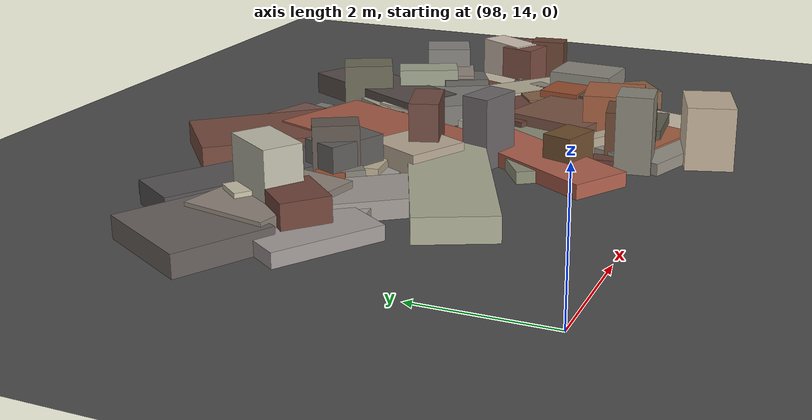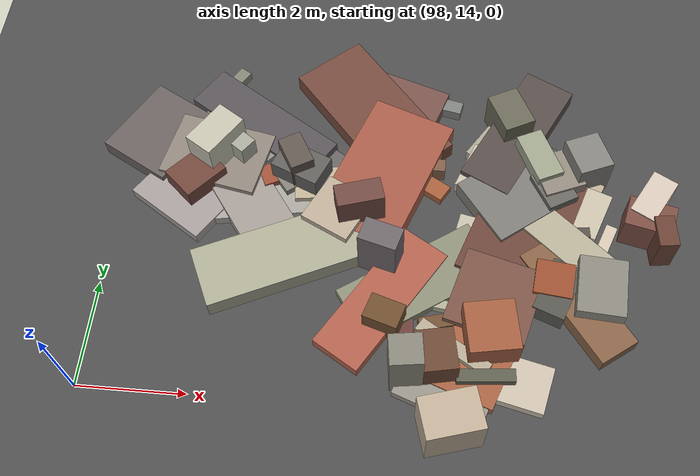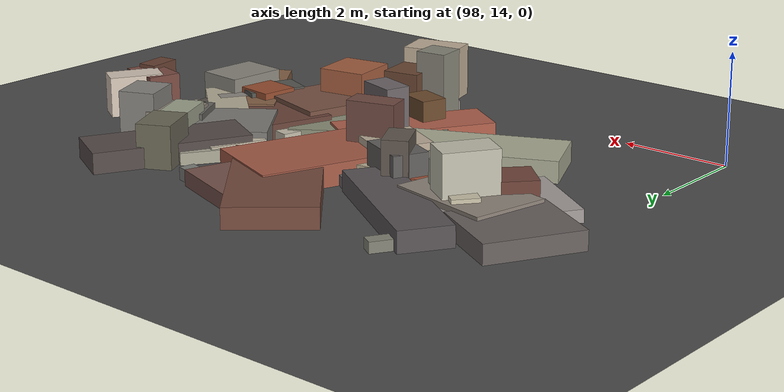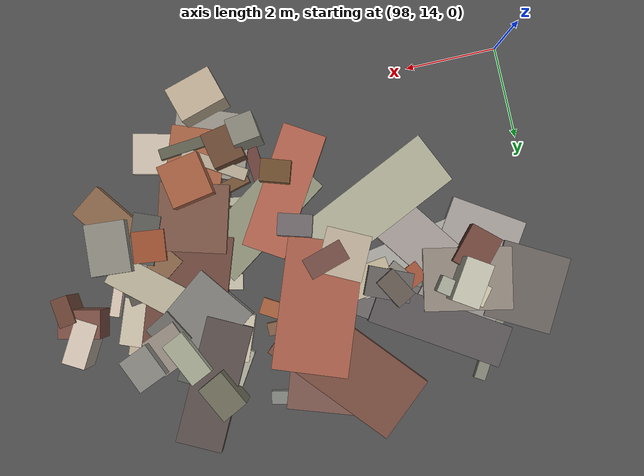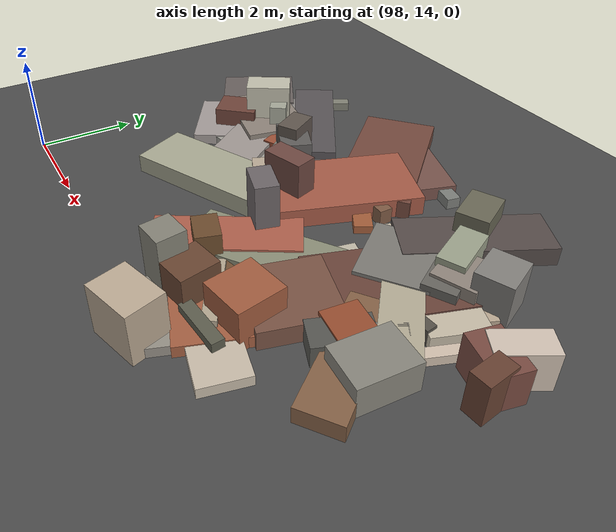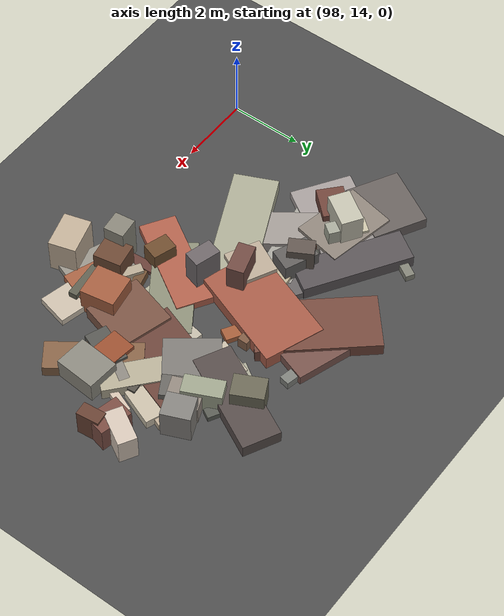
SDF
<sdf version="1.6">
 <world name="navitas_arena">
  <model name="ground_plane">
   <static>true</static>
   <link name="link">
    <collision name="collision">
     <geometry><plane><normal>0 0 1</normal><size>400 400</size></plane></geometry>
     <surface><friction><ode><mu>0.800</mu><mu2>0.800</mu2></ode></friction></surface>
    </collision>
    <visual name="visual">
     <cast_shadows>false</cast_shadows>
     <geometry><plane><normal>0 0 1</normal><size>400 400</size></plane></geometry>
     <material>
      <specular>0.04 0.04 0.04 1</specular>
      <script>
       <uri>file://media/materials/scripts/navitas_asphalt.material</uri>
       <name>Navitas/RealArenaAsphalt</name>
      </script>
     </material>
    </visual>
   </link>
  </model>
  <model name="deb_zor_3">
   <static>true</static>
   <pose>103.791 19.572 0.000 0 0 0</pose>
   <link name="link">
    <collision name="col_0">
     <pose>-0.552 0.626 0.140 0.000 0.000 1.245</pose>
     <geometry><box><size>1.552 1.609 0.280</size></box></geometry>
    </collision>
    <visual name="vis_0">
     <pose>-0.552 0.626 0.140 0.000 0.000 1.245</pose>
     <geometry><box><size>1.552 1.609 0.280</size></box></geometry>
     <material>
      <ambient>0.43 0.31 0.27 1</ambient>
      <diffuse>0.47 0.33 0.30 1</diffuse>
      <specular>0.05 0.05 0.045 1</specular>
     </material>
    </visual>
    <collision name="col_1">
     <pose>0.297 -1.087 0.084 0.000 0.000 1.035</pose>
     <geometry><box><size>0.359 0.470 0.167</size></box></geometry>
    </collision>
    <visual name="vis_1">
     <pose>0.297 -1.087 0.084 0.000 0.000 1.035</pose>
     <geometry><box><size>0.359 0.470 0.167</size></box></geometry>
     <material>
      <ambient>0.59 0.34 0.21 1</ambient>
      <diffuse>0.64 0.37 0.23 1</diffuse>
      <specular>0.05 0.05 0.045 1</specular>
     </material>
    </visual>
    <collision name="col_2">
     <pose>-1.042 0.510 0.185 0.000 0.000 2.286</pose>
     <geometry><box><size>3.177 1.525 0.370</size></box></geometry>
    </collision>
    <visual name="vis_2">
     <pose>-1.042 0.510 0.185 0.000 0.000 2.286</pose>
     <geometry><box><size>3.177 1.525 0.370</size></box></geometry>
     <material>
      <ambient>0.42 0.27 0.22 1</ambient>
      <diffuse>0.46 0.29 0.24 1</diffuse>
      <specular>0.05 0.05 0.045 1</specular>
     </material>
    </visual>
    <collision name="col_3">
     <pose>0.343 -0.657 0.160 0.000 0.000 3.133</pose>
     <geometry><box><size>0.238 0.269 0.320</size></box></geometry>
    </collision>
    <visual name="vis_3">
     <pose>0.343 -0.657 0.160 0.000 0.000 3.133</pose>
     <geometry><box><size>0.238 0.269 0.320</size></box></geometry>
     <material>
      <ambient>0.46 0.33 0.25 1</ambient>
      <diffuse>0.50 0.36 0.27 1</diffuse>
      <specular>0.05 0.05 0.045 1</specular>
     </material>
    </visual>
    <collision name="col_4">
     <pose>0.541 0.850 0.112 0.000 0.000 1.362</pose>
     <geometry><box><size>0.281 0.378 0.223</size></box></geometry>
    </collision>
    <visual name="vis_4">
     <pose>0.541 0.850 0.112 0.000 0.000 1.362</pose>
     <geometry><box><size>0.281 0.378 0.223</size></box></geometry>
     <material>
      <ambient>0.45 0.46 0.45 1</ambient>
      <diffuse>0.49 0.50 0.48 1</diffuse>
      <specular>0.05 0.05 0.045 1</specular>
     </material>
    </visual>
   </link>
  </model>
  <model name="deb_zor_108">
   <static>true</static>
   <pose>105.572 19.106 0.000 0 0 0</pose>
   <link name="link">
    <collision name="col_0">
     <pose>0.775 -0.592 0.235 0.000 0.000 2.083</pose>
     <geometry><box><size>0.789 0.610 0.470</size></box></geometry>
    </collision>
    <visual name="vis_0">
     <pose>0.775 -0.592 0.235 0.000 0.000 2.083</pose>
     <geometry><box><size>0.789 0.610 0.470</size></box></geometry>
     <material>
      <ambient>0.38 0.37 0.35 1</ambient>
      <diffuse>0.41 0.40 0.38 1</diffuse>
      <specular>0.05 0.05 0.045 1</specular>
     </material>
    </visual>
    <collision name="col_1">
     <pose>0.611 0.437 0.079 0.000 0.000 1.068</pose>
     <geometry><box><size>0.286 0.476 0.159</size></box></geometry>
    </collision>
    <visual name="vis_1">
     <pose>0.611 0.437 0.079 0.000 0.000 1.068</pose>
     <geometry><box><size>0.286 0.476 0.159</size></box></geometry>
     <material>
      <ambient>0.33 0.33 0.31 1</ambient>
      <diffuse>0.35 0.36 0.33 1</diffuse>
      <specular>0.05 0.05 0.045 1</specular>
     </material>
    </visual>
    <collision name="col_2">
     <pose>0.838 -0.281 0.264 0.000 0.000 0.389</pose>
     <geometry><box><size>0.818 0.868 0.527</size></box></geometry>
    </collision>
    <visual name="vis_2">
     <pose>0.838 -0.281 0.264 0.000 0.000 0.389</pose>
     <geometry><box><size>0.818 0.868 0.527</size></box></geometry>
     <material>
      <ambient>0.53 0.49 0.45 1</ambient>
      <diffuse>0.57 0.53 0.49 1</diffuse>
      <specular>0.05 0.05 0.045 1</specular>
     </material>
    </visual>
    <collision name="col_3">
     <pose>0.078 0.694 0.187 0.000 0.000 1.097</pose>
     <geometry><box><size>2.805 1.026 0.374</size></box></geometry>
    </collision>
    <visual name="vis_3">
     <pose>0.078 0.694 0.187 0.000 0.000 1.097</pose>
     <geometry><box><size>2.805 1.026 0.374</size></box></geometry>
     <material>
      <ambient>0.31 0.28 0.27 1</ambient>
      <diffuse>0.34 0.30 0.29 1</diffuse>
      <specular>0.05 0.05 0.045 1</specular>
     </material>
    </visual>
   </link>
  </model>
  <model name="deb_zor_120">
   <static>true</static>
   <pose>106.979 16.659 0.000 0 0 0</pose>
   <link name="link">
    <collision name="col_0">
     <pose>-0.134 0.970 0.159 0.000 0.000 1.677</pose>
     <geometry><box><size>0.212 0.374 0.318</size></box></geometry>
    </collision>
    <visual name="vis_0">
     <pose>-0.134 0.970 0.159 0.000 0.000 1.677</pose>
     <geometry><box><size>0.212 0.374 0.318</size></box></geometry>
     <material>
      <ambient>0.32 0.30 0.27 1</ambient>
      <diffuse>0.34 0.32 0.29 1</diffuse>
      <specular>0.05 0.05 0.045 1</specular>
     </material>
    </visual>
    <collision name="col_1">
     <pose>-0.905 0.522 0.100 0.000 0.000 1.811</pose>
     <geometry><box><size>1.975 1.145 0.199</size></box></geometry>
    </collision>
    <visual name="vis_1">
     <pose>-0.905 0.522 0.100 0.000 0.000 1.811</pose>
     <geometry><box><size>1.975 1.145 0.199</size></box></geometry>
     <material>
      <ambient>0.36 0.36 0.33 1</ambient>
      <diffuse>0.39 0.38 0.35 1</diffuse>
      <specular>0.05 0.05 0.045 1</specular>
     </material>
    </visual>
    <collision name="col_2">
     <pose>0.221 0.507 0.092 0.000 0.000 1.198</pose>
     <geometry><box><size>1.545 0.216 0.183</size></box></geometry>
    </collision>
    <visual name="vis_2">
     <pose>0.221 0.507 0.092 0.000 0.000 1.198</pose>
     <geometry><box><size>1.545 0.216 0.183</size></box></geometry>
     <material>
      <ambient>0.76 0.70 0.64 1</ambient>
      <diffuse>0.83 0.76 0.69 1</diffuse>
      <specular>0.05 0.05 0.045 1</specular>
     </material>
    </visual>
    <collision name="col_3">
     <pose>-0.553 -0.272 0.204 0.000 0.000 1.194</pose>
     <geometry><box><size>1.084 0.601 0.408</size></box></geometry>
    </collision>
    <visual name="vis_3">
     <pose>-0.553 -0.272 0.204 0.000 0.000 1.194</pose>
     <geometry><box><size>1.084 0.601 0.408</size></box></geometry>
     <material>
      <ambient>0.31 0.32 0.30 1</ambient>
      <diffuse>0.34 0.34 0.32 1</diffuse>
      <specular>0.05 0.05 0.045 1</specular>
     </material>
    </visual>
    <collision name="col_4">
     <pose>0.284 -0.122 0.081 0.000 0.000 0.202</pose>
     <geometry><box><size>0.477 0.358 0.163</size></box></geometry>
    </collision>
    <visual name="vis_4">
     <pose>0.284 -0.122 0.081 0.000 0.000 0.202</pose>
     <geometry><box><size>0.477 0.358 0.163</size></box></geometry>
     <material>
      <ambient>0.57 0.56 0.54 1</ambient>
      <diffuse>0.62 0.60 0.58 1</diffuse>
      <specular>0.05 0.05 0.045 1</specular>
     </material>
    </visual>
    <collision name="col_5">
     <pose>-0.632 -0.090 0.222 0.000 0.000 1.450</pose>
     <geometry><box><size>0.688 0.713 0.443</size></box></geometry>
    </collision>
    <visual name="vis_5">
     <pose>-0.632 -0.090 0.222 0.000 0.000 1.450</pose>
     <geometry><box><size>0.688 0.713 0.443</size></box></geometry>
     <material>
      <ambient>0.55 0.29 0.18 1</ambient>
      <diffuse>0.60 0.31 0.19 1</diffuse>
      <specular>0.05 0.05 0.045 1</specular>
     </material>
    </visual>
   </link>
  </model>
  <model name="deb_zor_137">
   <static>true</static>
   <pose>100.641 18.951 0.000 0 0 0</pose>
   <link name="link">
    <collision name="col_0">
     <pose>-0.416 0.496 0.152 0.000 0.000 2.414</pose>
     <geometry><box><size>1.753 1.016 0.304</size></box></geometry>
    </collision>
    <visual name="vis_0">
     <pose>-0.416 0.496 0.152 0.000 0.000 2.414</pose>
     <geometry><box><size>1.753 1.016 0.304</size></box></geometry>
     <material>
      <ambient>0.53 0.51 0.50 1</ambient>
      <diffuse>0.57 0.55 0.54 1</diffuse>
      <specular>0.05 0.05 0.045 1</specular>
     </material>
    </visual>
    <collision name="col_1">
     <pose>0.647 -0.556 0.169 0.000 0.000 0.662</pose>
     <geometry><box><size>0.477 0.479 0.338</size></box></geometry>
    </collision>
    <visual name="vis_1">
     <pose>0.647 -0.556 0.169 0.000 0.000 0.662</pose>
     <geometry><box><size>0.477 0.479 0.338</size></box></geometry>
     <material>
      <ambient>0.47 0.47 0.42 1</ambient>
      <diffuse>0.51 0.50 0.46 1</diffuse>
      <specular>0.05 0.05 0.045 1</specular>
     </material>
    </visual>
    <collision name="col_2">
     <pose>-0.855 -0.148 0.200 0.000 0.000 2.942</pose>
     <geometry><box><size>1.927 1.370 0.399</size></box></geometry>
    </collision>
    <visual name="vis_2">
     <pose>-0.855 -0.148 0.200 0.000 0.000 2.942</pose>
     <geometry><box><size>1.927 1.370 0.399</size></box></geometry>
     <material>
      <ambient>0.52 0.48 0.45 1</ambient>
      <diffuse>0.56 0.52 0.48 1</diffuse>
      <specular>0.05 0.05 0.045 1</specular>
     </material>
    </visual>
    <collision name="col_3">
     <pose>0.819 0.012 0.095 0.000 0.000 2.564</pose>
     <geometry><box><size>2.078 1.050 0.190</size></box></geometry>
    </collision>
    <visual name="vis_3">
     <pose>0.819 0.012 0.095 0.000 0.000 2.564</pose>
     <geometry><box><size>2.078 1.050 0.190</size></box></geometry>
     <material>
      <ambient>0.38 0.36 0.36 1</ambient>
      <diffuse>0.41 0.39 0.39 1</diffuse>
      <specular>0.05 0.05 0.045 1</specular>
     </material>
    </visual>
    <collision name="col_4">
     <pose>-0.627 -0.031 0.101 0.000 0.000 0.520</pose>
     <geometry><box><size>0.445 0.392 0.203</size></box></geometry>
    </collision>
    <visual name="vis_4">
     <pose>-0.627 -0.031 0.101 0.000 0.000 0.520</pose>
     <geometry><box><size>0.445 0.392 0.203</size></box></geometry>
     <material>
      <ambient>0.59 0.59 0.52 1</ambient>
      <diffuse>0.64 0.64 0.56 1</diffuse>
      <specular>0.05 0.05 0.045 1</specular>
     </material>
    </visual>
    <collision name="col_5">
     <pose>-0.055 0.680 0.183 0.000 0.000 2.574</pose>
     <geometry><box><size>2.995 0.915 0.365</size></box></geometry>
    </collision>
    <visual name="vis_5">
     <pose>-0.055 0.680 0.183 0.000 0.000 2.574</pose>
     <geometry><box><size>2.995 0.915 0.365</size></box></geometry>
     <material>
      <ambient>0.32 0.30 0.32 1</ambient>
      <diffuse>0.35 0.33 0.34 1</diffuse>
      <specular>0.05 0.05 0.045 1</specular>
     </material>
    </visual>
    <collision name="col_6">
     <pose>-0.198 0.166 0.083 0.000 0.000 2.632</pose>
     <geometry><box><size>2.589 0.929 0.166</size></box></geometry>
    </collision>
    <visual name="vis_6">
     <pose>-0.198 0.166 0.083 0.000 0.000 2.632</pose>
     <geometry><box><size>2.589 0.929 0.166</size></box></geometry>
     <material>
      <ambient>0.43 0.45 0.39 1</ambient>
      <diffuse>0.46 0.48 0.42 1</diffuse>
      <specular>0.05 0.05 0.045 1</specular>
     </material>
    </visual>
   </link>
  </model>
  <model name="deb_zor_149">
   <static>true</static>
   <pose>107.491 18.188 0.000 0 0 0</pose>
   <link name="link">
    <collision name="col_0">
     <pose>0.848 -0.658 0.398 0.000 0.000 1.688</pose>
     <geometry><box><size>0.619 0.365 0.797</size></box></geometry>
    </collision>
    <visual name="vis_0">
     <pose>0.848 -0.658 0.398 0.000 0.000 1.688</pose>
     <geometry><box><size>0.619 0.365 0.797</size></box></geometry>
     <material>
      <ambient>0.38 0.24 0.19 1</ambient>
      <diffuse>0.41 0.26 0.20 1</diffuse>
      <specular>0.05 0.05 0.045 1</specular>
     </material>
    </visual>
    <collision name="col_1">
     <pose>0.603 -0.321 0.363 0.000 0.000 1.339</pose>
     <geometry><box><size>0.619 0.894 0.725</size></box></geometry>
    </collision>
    <visual name="vis_1">
     <pose>0.603 -0.321 0.363 0.000 0.000 1.339</pose>
     <geometry><box><size>0.619 0.894 0.725</size></box></geometry>
     <material>
      <ambient>0.44 0.28 0.24 1</ambient>
      <diffuse>0.48 0.30 0.26 1</diffuse>
      <specular>0.05 0.05 0.045 1</specular>
     </material>
    </visual>
    <collision name="col_2">
     <pose>-0.532 0.887 0.430 0.000 0.000 3.541</pose>
     <geometry><box><size>0.675 0.771 0.860</size></box></geometry>
    </collision>
    <visual name="vis_2">
     <pose>-0.532 0.887 0.430 0.000 0.000 3.541</pose>
     <geometry><box><size>0.675 0.771 0.860</size></box></geometry>
     <material>
      <ambient>0.48 0.48 0.45 1</ambient>
      <diffuse>0.52 0.51 0.49 1</diffuse>
      <specular>0.05 0.05 0.045 1</specular>
     </material>
    </visual>
    <collision name="col_3">
     <pose>-0.347 0.514 0.102 0.000 0.000 2.754</pose>
     <geometry><box><size>0.356 0.281 0.203</size></box></geometry>
    </collision>
    <visual name="vis_3">
     <pose>-0.347 0.514 0.102 0.000 0.000 2.754</pose>
     <geometry><box><size>0.356 0.281 0.203</size></box></geometry>
     <material>
      <ambient>0.69 0.62 0.53 1</ambient>
      <diffuse>0.74 0.67 0.58 1</diffuse>
      <specular>0.05 0.05 0.045 1</specular>
     </material>
    </visual>
    <collision name="col_4">
     <pose>0.675 0.088 0.375 0.000 0.000 1.049</pose>
     <geometry><box><size>0.985 0.499 0.750</size></box></geometry>
    </collision>
    <visual name="vis_4">
     <pose>0.675 0.088 0.375 0.000 0.000 1.049</pose>
     <geometry><box><size>0.985 0.499 0.750</size></box></geometry>
     <material>
      <ambient>0.77 0.71 0.65 1</ambient>
      <diffuse>0.83 0.77 0.71 1</diffuse>
      <specular>0.05 0.05 0.045 1</specular>
     </material>
    </visual>
   </link>
  </model>
  <model name="deb_zor_178">
   <static>true</static>
   <pose>104.690 14.770 0.000 0 0 0</pose>
   <link name="link">
    <collision name="col_0">
     <pose>-0.930 -0.094 0.611 0.000 0.000 0.131</pose>
     <geometry><box><size>0.584 0.562 1.222</size></box></geometry>
    </collision>
    <visual name="vis_0">
     <pose>-0.930 -0.094 0.611 0.000 0.000 0.131</pose>
     <geometry><box><size>0.584 0.562 1.222</size></box></geometry>
     <material>
      <ambient>0.49 0.48 0.44 1</ambient>
      <diffuse>0.53 0.52 0.47 1</diffuse>
      <specular>0.05 0.05 0.045 1</specular>
     </material>
    </visual>
    <collision name="col_1">
     <pose>-0.419 0.099 0.410 0.000 0.000 0.189</pose>
     <geometry><box><size>0.696 0.769 0.821</size></box></geometry>
    </collision>
    <visual name="vis_1">
     <pose>-0.419 0.099 0.410 0.000 0.000 0.189</pose>
     <geometry><box><size>0.696 0.769 0.821</size></box></geometry>
     <material>
      <ambient>0.39 0.26 0.19 1</ambient>
      <diffuse>0.42 0.28 0.20 1</diffuse>
      <specular>0.05 0.05 0.045 1</specular>
     </material>
    </visual>
    <collision name="col_2">
     <pose>-0.111 0.373 0.173 0.000 0.000 -0.558</pose>
     <geometry><box><size>1.474 0.263 0.346</size></box></geometry>
    </collision>
    <visual name="vis_2">
     <pose>-0.111 0.373 0.173 0.000 0.000 -0.558</pose>
     <geometry><box><size>1.474 0.263 0.346</size></box></geometry>
     <material>
      <ambient>0.66 0.61 0.53 1</ambient>
      <diffuse>0.71 0.66 0.57 1</diffuse>
      <specular>0.05 0.05 0.045 1</specular>
     </material>
    </visual>
    <collision name="col_3">
     <pose>0.473 -0.127 0.188 0.000 0.000 0.084</pose>
     <geometry><box><size>1.043 0.235 0.375</size></box></geometry>
    </collision>
    <visual name="vis_3">
     <pose>0.473 -0.127 0.188 0.000 0.000 0.084</pose>
     <geometry><box><size>1.043 0.235 0.375</size></box></geometry>
     <material>
      <ambient>0.34 0.34 0.28 1</ambient>
      <diffuse>0.37 0.37 0.31 1</diffuse>
      <specular>0.05 0.05 0.045 1</specular>
     </material>
    </visual>
    <collision name="col_4">
     <pose>-0.114 -1.047 0.500 0.000 0.000 0.283</pose>
     <geometry><box><size>1.021 0.748 1.001</size></box></geometry>
    </collision>
    <visual name="vis_4">
     <pose>-0.114 -1.047 0.500 0.000 0.000 0.283</pose>
     <geometry><box><size>1.021 0.748 1.001</size></box></geometry>
     <material>
      <ambient>0.70 0.63 0.55 1</ambient>
      <diffuse>0.75 0.68 0.59 1</diffuse>
      <specular>0.05 0.05 0.045 1</specular>
     </material>
    </visual>
   </link>
  </model>
  <model name="deb_zor_189">
   <static>true</static>
   <pose>103.122 16.179 0.000 0 0 0</pose>
   <link name="link">
    <collision name="col_0">
     <pose>0.034 0.676 0.570 0.000 0.000 1.290</pose>
     <geometry><box><size>0.465 0.729 1.141</size></box></geometry>
    </collision>
    <visual name="vis_0">
     <pose>0.034 0.676 0.570 0.000 0.000 1.290</pose>
     <geometry><box><size>0.465 0.729 1.141</size></box></geometry>
     <material>
      <ambient>0.40 0.37 0.38 1</ambient>
      <diffuse>0.43 0.40 0.41 1</diffuse>
      <specular>0.05 0.05 0.045 1</specular>
     </material>
    </visual>
    <collision name="col_1">
     <pose>0.402 0.571 0.116 0.000 0.000 1.571</pose>
     <geometry><box><size>1.067 0.194 0.232</size></box></geometry>
    </collision>
    <visual name="vis_1">
     <pose>0.402 0.571 0.116 0.000 0.000 1.571</pose>
     <geometry><box><size>1.067 0.194 0.232</size></box></geometry>
     <material>
      <ambient>0.69 0.67 0.56 1</ambient>
      <diffuse>0.75 0.72 0.60 1</diffuse>
      <specular>0.05 0.05 0.045 1</specular>
     </material>
    </visual>
    <collision name="col_2">
     <pose>0.196 -0.572 0.308 0.000 0.000 1.259</pose>
     <geometry><box><size>0.485 0.658 0.615</size></box></geometry>
    </collision>
    <visual name="vis_2">
     <pose>0.196 -0.572 0.308 0.000 0.000 1.259</pose>
     <geometry><box><size>0.485 0.658 0.615</size></box></geometry>
     <material>
      <ambient>0.40 0.28 0.17 1</ambient>
      <diffuse>0.43 0.30 0.18 1</diffuse>
      <specular>0.05 0.05 0.045 1</specular>
     </material>
    </visual>
    <collision name="col_3">
     <pose>0.765 0.265 0.097 0.000 0.000 0.595</pose>
     <geometry><box><size>2.842 1.148 0.195</size></box></geometry>
    </collision>
    <visual name="vis_3">
     <pose>0.765 0.265 0.097 0.000 0.000 0.595</pose>
     <geometry><box><size>2.842 1.148 0.195</size></box></geometry>
     <material>
      <ambient>0.51 0.51 0.44 1</ambient>
      <diffuse>0.55 0.56 0.47 1</diffuse>
      <specular>0.05 0.05 0.045 1</specular>
     </material>
    </visual>
    <collision name="col_4">
     <pose>0.575 -0.554 0.065 0.000 0.000 1.661</pose>
     <geometry><box><size>1.742 0.290 0.131</size></box></geometry>
    </collision>
    <visual name="vis_4">
     <pose>0.575 -0.554 0.065 0.000 0.000 1.661</pose>
     <geometry><box><size>1.742 0.290 0.131</size></box></geometry>
     <material>
      <ambient>0.38 0.23 0.20 1</ambient>
      <diffuse>0.41 0.25 0.22 1</diffuse>
      <specular>0.05 0.05 0.045 1</specular>
     </material>
    </visual>
    <collision name="col_5">
     <pose>0.727 -0.093 0.081 0.000 0.000 -0.149</pose>
     <geometry><box><size>1.362 0.174 0.162</size></box></geometry>
    </collision>
    <visual name="vis_5">
     <pose>0.727 -0.093 0.081 0.000 0.000 -0.149</pose>
     <geometry><box><size>1.362 0.174 0.162</size></box></geometry>
     <material>
      <ambient>0.64 0.63 0.55 1</ambient>
      <diffuse>0.69 0.68 0.59 1</diffuse>
      <specular>0.05 0.05 0.045 1</specular>
     </material>
    </visual>
    <collision name="col_6">
     <pose>0.115 -0.142 0.117 0.000 0.000 1.016</pose>
     <geometry><box><size>2.815 0.982 0.233</size></box></geometry>
    </collision>
    <visual name="vis_6">
     <pose>0.115 -0.142 0.117 0.000 0.000 1.016</pose>
     <geometry><box><size>2.815 0.982 0.233</size></box></geometry>
     <material>
      <ambient>0.64 0.36 0.28 1</ambient>
      <diffuse>0.69 0.38 0.30 1</diffuse>
      <specular>0.05 0.05 0.045 1</specular>
     </material>
    </visual>
   </link>
  </model>
  <model name="deb_zor_224">
   <static>true</static>
   <pose>101.871 17.901 0.000 0 0 0</pose>
   <link name="link">
    <collision name="col_0">
     <pose>0.099 0.609 0.070 0.000 0.000 1.183</pose>
     <geometry><box><size>0.264 0.238 0.139</size></box></geometry>
    </collision>
    <visual name="vis_0">
     <pose>0.099 0.609 0.070 0.000 0.000 1.183</pose>
     <geometry><box><size>0.264 0.238 0.139</size></box></geometry>
     <material>
      <ambient>0.34 0.32 0.28 1</ambient>
      <diffuse>0.37 0.34 0.31 1</diffuse>
      <specular>0.05 0.05 0.045 1</specular>
     </material>
    </visual>
    <collision name="col_1">
     <pose>0.407 -0.217 0.262 0.000 0.000 1.105</pose>
     <geometry><box><size>1.016 0.998 0.523</size></box></geometry>
    </collision>
    <visual name="vis_1">
     <pose>0.407 -0.217 0.262 0.000 0.000 1.105</pose>
     <geometry><box><size>1.016 0.998 0.523</size></box></geometry>
     <material>
      <ambient>0.68 0.62 0.55 1</ambient>
      <diffuse>0.73 0.67 0.59 1</diffuse>
      <specular>0.05 0.05 0.045 1</specular>
     </material>
    </visual>
    <collision name="col_2">
     <pose>-0.375 0.618 0.364 0.000 0.000 1.163</pose>
     <geometry><box><size>0.639 0.972 0.728</size></box></geometry>
    </collision>
    <visual name="vis_2">
     <pose>-0.375 0.618 0.364 0.000 0.000 1.163</pose>
     <geometry><box><size>0.639 0.972 0.728</size></box></geometry>
     <material>
      <ambient>0.35 0.34 0.33 1</ambient>
      <diffuse>0.38 0.37 0.36 1</diffuse>
      <specular>0.05 0.05 0.045 1</specular>
     </material>
    </visual>
    <collision name="col_3">
     <pose>0.399 0.483 0.155 0.000 0.000 3.266</pose>
     <geometry><box><size>1.806 0.684 0.311</size></box></geometry>
    </collision>
    <visual name="vis_3">
     <pose>0.399 0.483 0.155 0.000 0.000 3.266</pose>
     <geometry><box><size>1.806 0.684 0.311</size></box></geometry>
     <material>
      <ambient>0.69 0.64 0.54 1</ambient>
      <diffuse>0.74 0.69 0.58 1</diffuse>
      <specular>0.05 0.05 0.045 1</specular>
     </material>
    </visual>
   </link>
  </model>
  <model name="deb_zor_261">
   <static>true</static>
   <pose>105.200 18.207 0.000 0 0 0</pose>
   <link name="link">
    <collision name="col_0">
     <pose>-0.410 -0.485 0.087 0.000 0.000 -0.218</pose>
     <geometry><box><size>0.461 0.346 0.174</size></box></geometry>
    </collision>
    <visual name="vis_0">
     <pose>-0.410 -0.485 0.087 0.000 0.000 -0.218</pose>
     <geometry><box><size>0.461 0.346 0.174</size></box></geometry>
     <material>
      <ambient>0.70 0.68 0.61 1</ambient>
      <diffuse>0.76 0.73 0.66 1</diffuse>
      <specular>0.05 0.05 0.045 1</specular>
     </material>
    </visual>
    <collision name="col_1">
     <pose>0.412 -0.359 0.155 0.000 0.000 1.882</pose>
     <geometry><box><size>0.394 0.299 0.309</size></box></geometry>
    </collision>
    <visual name="vis_1">
     <pose>0.412 -0.359 0.155 0.000 0.000 1.882</pose>
     <geometry><box><size>0.394 0.299 0.309</size></box></geometry>
     <material>
      <ambient>0.61 0.34 0.25 1</ambient>
      <diffuse>0.65 0.37 0.26 1</diffuse>
      <specular>0.05 0.05 0.045 1</specular>
     </material>
    </visual>
    <collision name="col_2">
     <pose>0.605 -0.399 0.143 0.000 0.000 1.237</pose>
     <geometry><box><size>2.767 1.741 0.285</size></box></geometry>
    </collision>
    <visual name="vis_2">
     <pose>0.605 -0.399 0.143 0.000 0.000 1.237</pose>
     <geometry><box><size>2.767 1.741 0.285</size></box></geometry>
     <material>
      <ambient>0.38 0.25 0.21 1</ambient>
      <diffuse>0.42 0.27 0.23 1</diffuse>
      <specular>0.05 0.05 0.045 1</specular>
     </material>
    </visual>
    <collision name="col_3">
     <pose>-0.055 -0.124 0.133 0.000 0.000 0.163</pose>
     <geometry><box><size>0.320 0.405 0.266</size></box></geometry>
    </collision>
    <visual name="vis_3">
     <pose>-0.055 -0.124 0.133 0.000 0.000 0.163</pose>
     <geometry><box><size>0.320 0.405 0.266</size></box></geometry>
     <material>
      <ambient>0.50 0.47 0.46 1</ambient>
      <diffuse>0.54 0.51 0.50 1</diffuse>
      <specular>0.05 0.05 0.045 1</specular>
     </material>
    </visual>
    <collision name="col_4">
     <pose>0.777 0.314 0.128 0.000 0.000 -0.363</pose>
     <geometry><box><size>2.861 1.034 0.256</size></box></geometry>
    </collision>
    <visual name="vis_4">
     <pose>0.777 0.314 0.128 0.000 0.000 -0.363</pose>
     <geometry><box><size>2.861 1.034 0.256</size></box></geometry>
     <material>
      <ambient>0.72 0.69 0.61 1</ambient>
      <diffuse>0.78 0.74 0.66 1</diffuse>
      <specular>0.05 0.05 0.045 1</specular>
     </material>
    </visual>
    <collision name="col_5">
     <pose>0.430 0.347 0.119 0.000 0.000 -0.663</pose>
     <geometry><box><size>0.300 0.201 0.238</size></box></geometry>
    </collision>
    <visual name="vis_5">
     <pose>0.430 0.347 0.119 0.000 0.000 -0.663</pose>
     <geometry><box><size>0.300 0.201 0.238</size></box></geometry>
     <material>
      <ambient>0.62 0.35 0.26 1</ambient>
      <diffuse>0.67 0.38 0.28 1</diffuse>
      <specular>0.05 0.05 0.045 1</specular>
     </material>
    </visual>
   </link>
  </model>
  <model name="deb_zor_268">
   <static>true</static>
   <pose>104.648 15.423 0.000 0 0 0</pose>
   <link name="link">
    <collision name="col_0">
     <pose>0.489 -0.036 0.111 0.000 0.000 1.217</pose>
     <geometry><box><size>2.354 1.223 0.223</size></box></geometry>
    </collision>
    <visual name="vis_0">
     <pose>0.489 -0.036 0.111 0.000 0.000 1.217</pose>
     <geometry><box><size>2.354 1.223 0.223</size></box></geometry>
     <material>
      <ambient>0.60 0.35 0.24 1</ambient>
      <diffuse>0.65 0.38 0.26 1</diffuse>
      <specular>0.05 0.05 0.045 1</specular>
     </material>
    </visual>
    <collision name="col_1">
     <pose>0.282 0.384 0.125 0.000 0.000 0.255</pose>
     <geometry><box><size>2.025 0.253 0.250</size></box></geometry>
    </collision>
    <visual name="vis_1">
     <pose>0.282 0.384 0.125 0.000 0.000 0.255</pose>
     <geometry><box><size>2.025 0.253 0.250</size></box></geometry>
     <material>
      <ambient>0.42 0.29 0.20 1</ambient>
      <diffuse>0.45 0.32 0.21 1</diffuse>
      <specular>0.05 0.05 0.045 1</specular>
     </material>
    </visual>
    <collision name="col_2">
     <pose>0.642 0.752 0.185 0.000 0.000 1.296</pose>
     <geometry><box><size>1.497 1.519 0.370</size></box></geometry>
    </collision>
    <visual name="vis_2">
     <pose>0.642 0.752 0.185 0.000 0.000 1.296</pose>
     <geometry><box><size>1.497 1.519 0.370</size></box></geometry>
     <material>
      <ambient>0.45 0.31 0.25 1</ambient>
      <diffuse>0.48 0.33 0.27 1</diffuse>
      <specular>0.05 0.05 0.045 1</specular>
     </material>
    </visual>
    <collision name="col_3">
     <pose>0.564 -0.028 0.407 0.000 0.000 0.170</pose>
     <geometry><box><size>0.911 0.943 0.815</size></box></geometry>
    </collision>
    <visual name="vis_3">
     <pose>0.564 -0.028 0.407 0.000 0.000 0.170</pose>
     <geometry><box><size>0.911 0.943 0.815</size></box></geometry>
     <material>
      <ambient>0.60 0.34 0.23 1</ambient>
      <diffuse>0.64 0.37 0.25 1</diffuse>
      <specular>0.05 0.05 0.045 1</specular>
     </material>
    </visual>
    <collision name="col_4">
     <pose>-0.073 -0.763 0.096 0.000 0.000 1.213</pose>
     <geometry><box><size>1.460 1.650 0.193</size></box></geometry>
    </collision>
    <visual name="vis_4">
     <pose>-0.073 -0.763 0.096 0.000 0.000 1.213</pose>
     <geometry><box><size>1.460 1.650 0.193</size></box></geometry>
     <material>
      <ambient>0.55 0.52 0.49 1</ambient>
      <diffuse>0.59 0.57 0.53 1</diffuse>
      <specular>0.05 0.05 0.045 1</specular>
     </material>
    </visual>
    <collision name="col_5">
     <pose>0.643 -0.684 0.100 0.000 0.000 -0.236</pose>
     <geometry><box><size>2.042 0.881 0.200</size></box></geometry>
    </collision>
    <visual name="vis_5">
     <pose>0.643 -0.684 0.100 0.000 0.000 -0.236</pose>
     <geometry><box><size>2.042 0.881 0.200</size></box></geometry>
     <material>
      <ambient>0.73 0.68 0.62 1</ambient>
      <diffuse>0.79 0.74 0.67 1</diffuse>
      <specular>0.05 0.05 0.045 1</specular>
     </material>
    </visual>
   </link>
  </model>
  <model name="deb_zor_317">
   <static>true</static>
   <pose>104.796 19.393 0.000 0 0 0</pose>
   <link name="link">
    <collision name="col_0">
     <pose>1.255 -0.288 0.325 0.000 0.000 2.008</pose>
     <geometry><box><size>1.046 0.522 0.650</size></box></geometry>
    </collision>
    <visual name="vis_0">
     <pose>1.255 -0.288 0.325 0.000 0.000 2.008</pose>
     <geometry><box><size>1.046 0.522 0.650</size></box></geometry>
     <material>
      <ambient>0.57 0.59 0.51 1</ambient>
      <diffuse>0.62 0.64 0.55 1</diffuse>
      <specular>0.05 0.05 0.045 1</specular>
     </material>
    </visual>
    <collision name="col_1">
     <pose>0.776 -1.012 0.180 0.000 0.000 2.213</pose>
     <geometry><box><size>1.464 1.592 0.360</size></box></geometry>
    </collision>
    <visual name="vis_1">
     <pose>0.776 -1.012 0.180 0.000 0.000 2.213</pose>
     <geometry><box><size>1.464 1.592 0.360</size></box></geometry>
     <material>
      <ambient>0.45 0.45 0.43 1</ambient>
      <diffuse>0.49 0.48 0.46 1</diffuse>
      <specular>0.05 0.05 0.045 1</specular>
     </material>
    </visual>
    <collision name="col_2">
     <pose>0.992 -0.322 0.110 0.000 0.000 2.569</pose>
     <geometry><box><size>2.195 0.802 0.221</size></box></geometry>
    </collision>
    <visual name="vis_2">
     <pose>0.992 -0.322 0.110 0.000 0.000 2.569</pose>
     <geometry><box><size>2.195 0.802 0.221</size></box></geometry>
     <material>
      <ambient>0.61 0.60 0.54 1</ambient>
      <diffuse>0.66 0.65 0.58 1</diffuse>
      <specular>0.05 0.05 0.045 1</specular>
     </material>
    </visual>
    <collision name="col_3">
     <pose>0.674 0.647 0.391 0.000 0.000 2.035</pose>
     <geometry><box><size>0.855 0.622 0.782</size></box></geometry>
    </collision>
    <visual name="vis_3">
     <pose>0.674 0.647 0.391 0.000 0.000 2.035</pose>
     <geometry><box><size>0.855 0.622 0.782</size></box></geometry>
     <material>
      <ambient>0.39 0.38 0.32 1</ambient>
      <diffuse>0.42 0.41 0.34 1</diffuse>
      <specular>0.05 0.05 0.045 1</specular>
     </material>
    </visual>
   </link>
  </model>
  <model name="deb_zor_318">
   <static>true</static>
   <pose>100.922 17.627 0.000 0 0 0</pose>
   <link name="link">
    <collision name="col_0">
     <pose>0.404 -0.881 0.194 0.000 0.000 0.433</pose>
     <geometry><box><size>3.181 1.205 0.389</size></box></geometry>
    </collision>
    <visual name="vis_0">
     <pose>0.404 -0.881 0.194 0.000 0.000 0.433</pose>
     <geometry><box><size>3.181 1.205 0.389</size></box></geometry>
     <material>
      <ambient>0.62 0.62 0.54 1</ambient>
      <diffuse>0.67 0.67 0.58 1</diffuse>
      <specular>0.05 0.05 0.045 1</specular>
     </material>
    </visual>
    <collision name="col_1">
     <pose>0.475 0.986 0.484 0.000 0.000 2.083</pose>
     <geometry><box><size>0.701 0.452 0.969</size></box></geometry>
    </collision>
    <visual name="vis_1">
     <pose>0.475 0.986 0.484 0.000 0.000 2.083</pose>
     <geometry><box><size>0.701 0.452 0.969</size></box></geometry>
     <material>
      <ambient>0.35 0.31 0.29 1</ambient>
      <diffuse>0.38 0.34 0.31 1</diffuse>
      <specular>0.05 0.05 0.045 1</specular>
     </material>
    </visual>
    <collision name="col_2">
     <pose>-0.162 0.424 0.097 0.000 0.000 0.168</pose>
     <geometry><box><size>2.725 0.957 0.194</size></box></geometry>
    </collision>
    <visual name="vis_2">
     <pose>-0.162 0.424 0.097 0.000 0.000 0.168</pose>
     <geometry><box><size>2.725 0.957 0.194</size></box></geometry>
     <material>
      <ambient>0.60 0.59 0.56 1</ambient>
      <diffuse>0.65 0.64 0.61 1</diffuse>
      <specular>0.05 0.05 0.045 1</specular>
     </material>
    </visual>
    <collision name="col_3">
     <pose>-0.281 0.138 0.146 0.000 0.000 2.190</pose>
     <geometry><box><size>1.454 1.053 0.292</size></box></geometry>
    </collision>
    <visual name="vis_3">
     <pose>-0.281 0.138 0.146 0.000 0.000 2.190</pose>
     <geometry><box><size>1.454 1.053 0.292</size></box></geometry>
     <material>
      <ambient>0.59 0.55 0.53 1</ambient>
      <diffuse>0.63 0.60 0.58 1</diffuse>
      <specular>0.05 0.05 0.045 1</specular>
     </material>
    </visual>
    <collision name="col_4">
     <pose>-0.004 0.840 0.164 0.000 0.000 2.008</pose>
     <geometry><box><size>0.440 0.452 0.327</size></box></geometry>
    </collision>
    <visual name="vis_4">
     <pose>-0.004 0.840 0.164 0.000 0.000 2.008</pose>
     <geometry><box><size>0.440 0.452 0.327</size></box></geometry>
     <material>
      <ambient>0.58 0.30 0.20 1</ambient>
      <diffuse>0.62 0.32 0.22 1</diffuse>
      <specular>0.05 0.05 0.045 1</specular>
     </material>
    </visual>
    <collision name="col_5">
     <pose>-0.736 0.050 0.061 0.000 0.000 1.271</pose>
     <geometry><box><size>0.208 0.457 0.122</size></box></geometry>
    </collision>
    <visual name="vis_5">
     <pose>-0.736 0.050 0.061 0.000 0.000 1.271</pose>
     <geometry><box><size>0.208 0.457 0.122</size></box></geometry>
     <material>
      <ambient>0.60 0.55 0.52 1</ambient>
      <diffuse>0.65 0.59 0.56 1</diffuse>
      <specular>0.05 0.05 0.045 1</specular>
     </material>
    </visual>
   </link>
  </model>
  <model name="deb_zor_342">
   <static>true</static>
   <pose>99.286 19.337 0.000 0 0 0</pose>
   <link name="link">
    <collision name="col_0">
     <pose>0.276 0.950 0.094 0.000 0.000 4.175</pose>
     <geometry><box><size>1.692 0.247 0.187</size></box></geometry>
    </collision>
    <visual name="vis_0">
     <pose>0.276 0.950 0.094 0.000 0.000 4.175</pose>
     <geometry><box><size>1.692 0.247 0.187</size></box></geometry>
     <material>
      <ambient>0.47 0.48 0.43 1</ambient>
      <diffuse>0.51 0.51 0.46 1</diffuse>
      <specular>0.05 0.05 0.045 1</specular>
     </material>
    </visual>
    <collision name="col_1">
     <pose>0.358 -0.183 0.236 0.000 0.000 4.040</pose>
     <geometry><box><size>0.469 0.417 0.472</size></box></geometry>
    </collision>
    <visual name="vis_1">
     <pose>0.358 -0.183 0.236 0.000 0.000 4.040</pose>
     <geometry><box><size>0.469 0.417 0.472</size></box></geometry>
     <material>
      <ambient>0.73 0.71 0.61 1</ambient>
      <diffuse>0.79 0.76 0.66 1</diffuse>
      <specular>0.05 0.05 0.045 1</specular>
     </material>
    </visual>
    <collision name="col_2">
     <pose>0.196 -1.095 0.303 0.000 0.000 3.980</pose>
     <geometry><box><size>0.905 0.727 0.607</size></box></geometry>
    </collision>
    <visual name="vis_2">
     <pose>0.196 -1.095 0.303 0.000 0.000 3.980</pose>
     <geometry><box><size>0.905 0.727 0.607</size></box></geometry>
     <material>
      <ambient>0.41 0.25 0.21 1</ambient>
      <diffuse>0.44 0.27 0.23 1</diffuse>
      <specular>0.05 0.05 0.045 1</specular>
     </material>
    </visual>
    <collision name="col_3">
     <pose>0.549 -0.484 0.576 0.000 0.000 2.567</pose>
     <geometry><box><size>0.593 0.966 1.151</size></box></geometry>
    </collision>
    <visual name="vis_3">
     <pose>0.549 -0.484 0.576 0.000 0.000 2.567</pose>
     <geometry><box><size>0.593 0.966 1.151</size></box></geometry>
     <material>
      <ambient>0.70 0.70 0.63 1</ambient>
      <diffuse>0.76 0.75 0.68 1</diffuse>
      <specular>0.05 0.05 0.045 1</specular>
     </material>
    </visual>
    <collision name="col_4">
     <pose>0.321 -0.866 0.113 0.000 0.000 4.136</pose>
     <geometry><box><size>2.424 1.682 0.226</size></box></geometry>
    </collision>
    <visual name="vis_4">
     <pose>0.321 -0.866 0.113 0.000 0.000 4.136</pose>
     <geometry><box><size>2.424 1.682 0.226</size></box></geometry>
     <material>
      <ambient>0.59 0.57 0.56 1</ambient>
      <diffuse>0.64 0.61 0.60 1</diffuse>
      <specular>0.05 0.05 0.045 1</specular>
     </material>
    </visual>
    <collision name="col_5">
     <pose>-0.722 -0.065 0.169 0.000 0.000 2.637</pose>
     <geometry><box><size>1.487 1.703 0.338</size></box></geometry>
    </collision>
    <visual name="vis_5">
     <pose>-0.722 -0.065 0.169 0.000 0.000 2.637</pose>
     <geometry><box><size>1.487 1.703 0.338</size></box></geometry>
     <material>
      <ambient>0.38 0.35 0.34 1</ambient>
      <diffuse>0.41 0.38 0.37 1</diffuse>
      <specular>0.05 0.05 0.045 1</specular>
     </material>
    </visual>
    <collision name="col_6">
     <pose>0.892 -0.406 0.406 0.000 0.000 2.511</pose>
     <geometry><box><size>0.688 0.361 0.812</size></box></geometry>
    </collision>
    <visual name="vis_6">
     <pose>0.892 -0.406 0.406 0.000 0.000 2.511</pose>
     <geometry><box><size>0.688 0.361 0.812</size></box></geometry>
     <material>
      <ambient>0.60 0.61 0.56 1</ambient>
      <diffuse>0.65 0.66 0.60 1</diffuse>
      <specular>0.05 0.05 0.045 1</specular>
     </material>
    </visual>
   </link>
  </model>
  <model name="deb_zor_351">
   <static>true</static>
   <pose>103.061 18.121 0.000 0 0 0</pose>
   <link name="link">
    <collision name="col_0">
     <pose>0.222 0.646 0.105 0.000 0.000 -0.615</pose>
     <geometry><box><size>1.152 0.186 0.209</size></box></geometry>
    </collision>
    <visual name="vis_0">
     <pose>0.222 0.646 0.105 0.000 0.000 -0.615</pose>
     <geometry><box><size>1.152 0.186 0.209</size></box></geometry>
     <material>
      <ambient>0.56 0.56 0.49 1</ambient>
      <diffuse>0.60 0.61 0.53 1</diffuse>
      <specular>0.05 0.05 0.045 1</specular>
     </material>
    </visual>
    <collision name="col_1">
     <pose>-0.371 -0.422 0.559 0.000 0.000 0.292</pose>
     <geometry><box><size>0.880 0.459 1.119</size></box></geometry>
    </collision>
    <visual name="vis_1">
     <pose>-0.371 -0.422 0.559 0.000 0.000 0.292</pose>
     <geometry><box><size>0.880 0.459 1.119</size></box></geometry>
     <material>
      <ambient>0.41 0.27 0.24 1</ambient>
      <diffuse>0.44 0.29 0.26 1</diffuse>
      <specular>0.05 0.05 0.045 1</specular>
     </material>
    </visual>
    <collision name="col_2">
     <pose>0.020 0.544 0.198 0.000 0.000 1.217</pose>
     <geometry><box><size>2.919 1.674 0.396</size></box></geometry>
    </collision>
    <visual name="vis_2">
     <pose>0.020 0.544 0.198 0.000 0.000 1.217</pose>
     <geometry><box><size>2.919 1.674 0.396</size></box></geometry>
     <material>
      <ambient>0.60 0.33 0.26 1</ambient>
      <diffuse>0.65 0.36 0.28 1</diffuse>
      <specular>0.05 0.05 0.045 1</specular>
     </material>
    </visual>
    <collision name="col_3">
     <pose>0.428 0.054 0.153 0.000 0.000 0.933</pose>
     <geometry><box><size>0.452 0.453 0.305</size></box></geometry>
    </collision>
    <visual name="vis_3">
     <pose>0.428 0.054 0.153 0.000 0.000 0.933</pose>
     <geometry><box><size>0.452 0.453 0.305</size></box></geometry>
     <material>
      <ambient>0.42 0.27 0.23 1</ambient>
      <diffuse>0.46 0.29 0.25 1</diffuse>
      <specular>0.05 0.05 0.045 1</specular>
     </material>
    </visual>
   </link>
  </model>
  <model name="deb_zor_396">
   <static>true</static>
   <pose>106.736 16.808 0.000 0 0 0</pose>
   <link name="link">
    <collision name="col_0">
     <pose>-0.180 0.627 0.167 0.000 0.000 2.427</pose>
     <geometry><box><size>1.835 0.719 0.334</size></box></geometry>
    </collision>
    <visual name="vis_0">
     <pose>-0.180 0.627 0.167 0.000 0.000 2.427</pose>
     <geometry><box><size>1.835 0.719 0.334</size></box></geometry>
     <material>
      <ambient>0.66 0.63 0.55 1</ambient>
      <diffuse>0.71 0.68 0.59 1</diffuse>
      <specular>0.05 0.05 0.045 1</specular>
     </material>
    </visual>
    <collision name="col_1">
     <pose>0.448 -0.388 0.298 0.000 0.000 1.495</pose>
     <geometry><box><size>1.126 0.880 0.597</size></box></geometry>
    </collision>
    <visual name="vis_1">
     <pose>0.448 -0.388 0.298 0.000 0.000 1.495</pose>
     <geometry><box><size>1.126 0.880 0.597</size></box></geometry>
     <material>
      <ambient>0.50 0.49 0.45 1</ambient>
      <diffuse>0.54 0.53 0.49 1</diffuse>
      <specular>0.05 0.05 0.045 1</specular>
     </material>
    </visual>
    <collision name="col_2">
     <pose>0.040 -0.532 0.161 0.000 0.000 2.201</pose>
     <geometry><box><size>2.486 0.795 0.321</size></box></geometry>
    </collision>
    <visual name="vis_2">
     <pose>0.040 -0.532 0.161 0.000 0.000 2.201</pose>
     <geometry><box><size>2.486 0.795 0.321</size></box></geometry>
     <material>
      <ambient>0.49 0.37 0.26 1</ambient>
      <diffuse>0.53 0.39 0.28 1</diffuse>
      <specular>0.05 0.05 0.045 1</specular>
     </material>
    </visual>
    <collision name="col_3">
     <pose>-0.258 -0.134 0.167 0.000 0.000 1.026</pose>
     <geometry><box><size>1.541 0.276 0.334</size></box></geometry>
    </collision>
    <visual name="vis_3">
     <pose>-0.258 -0.134 0.167 0.000 0.000 1.026</pose>
     <geometry><box><size>1.541 0.276 0.334</size></box></geometry>
     <material>
      <ambient>0.51 0.49 0.47 1</ambient>
      <diffuse>0.55 0.53 0.50 1</diffuse>
      <specular>0.05 0.05 0.045 1</specular>
     </material>
    </visual>
   </link>
  </model>
 </world>
</sdf>
